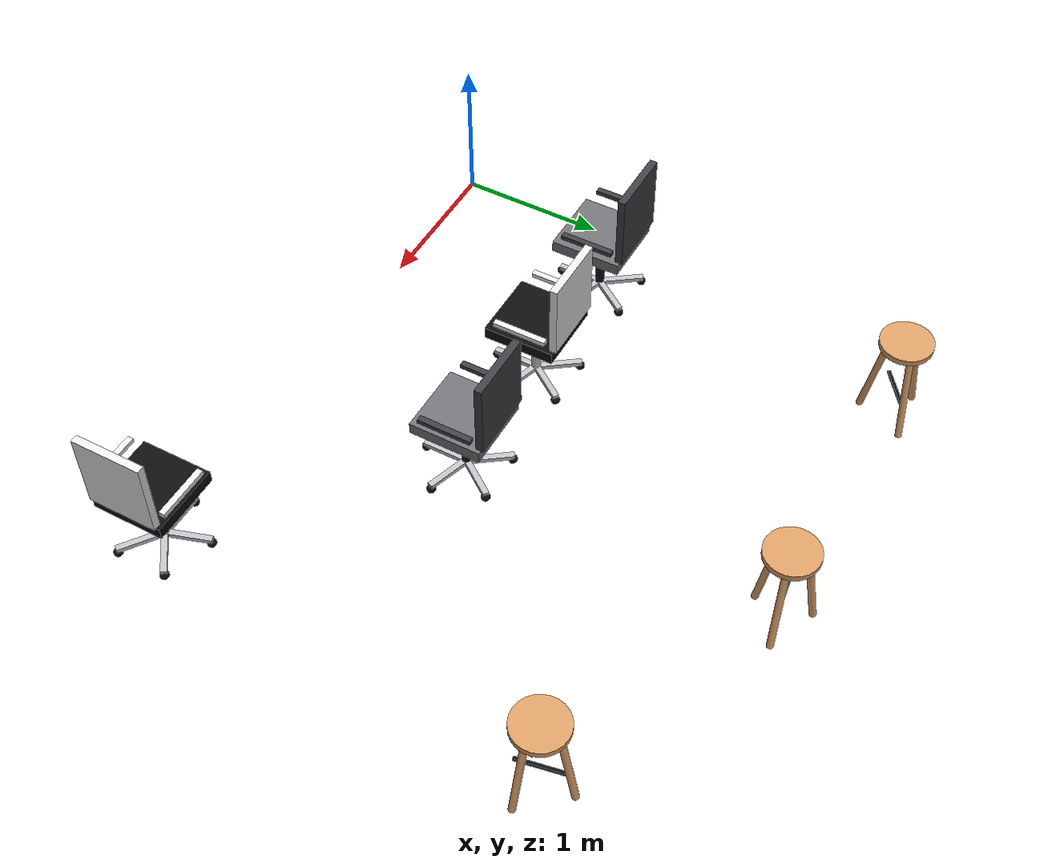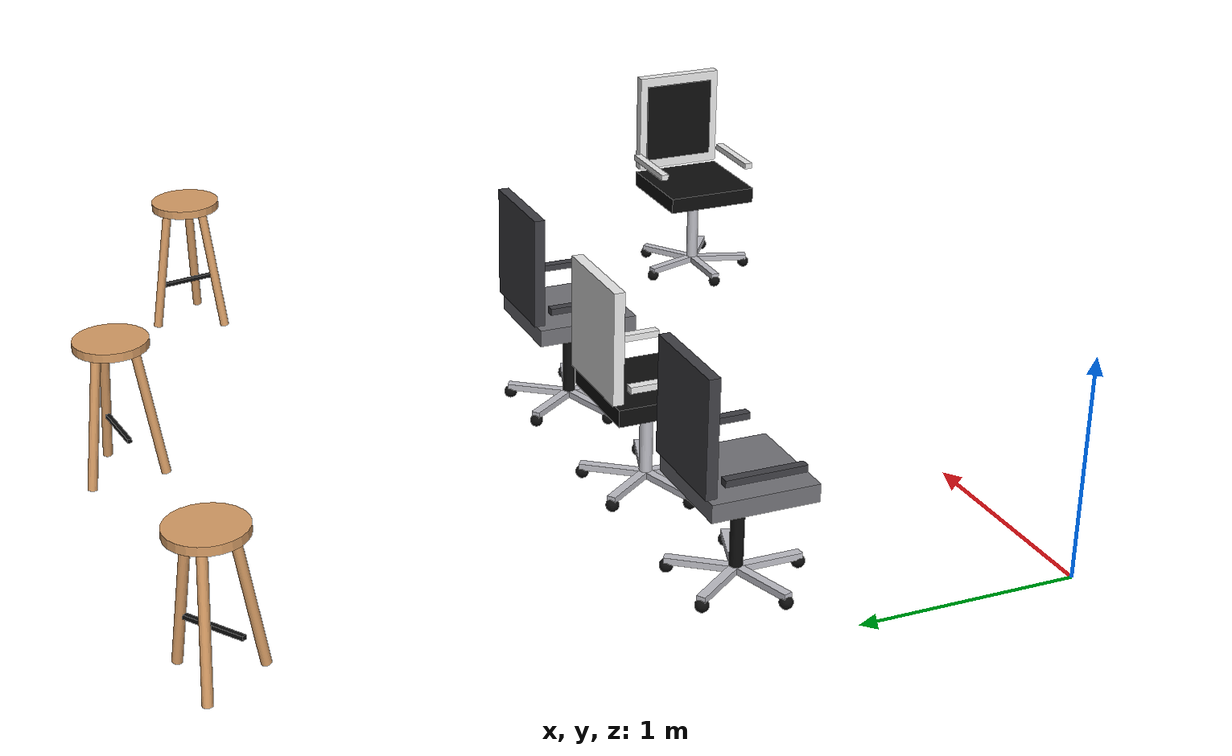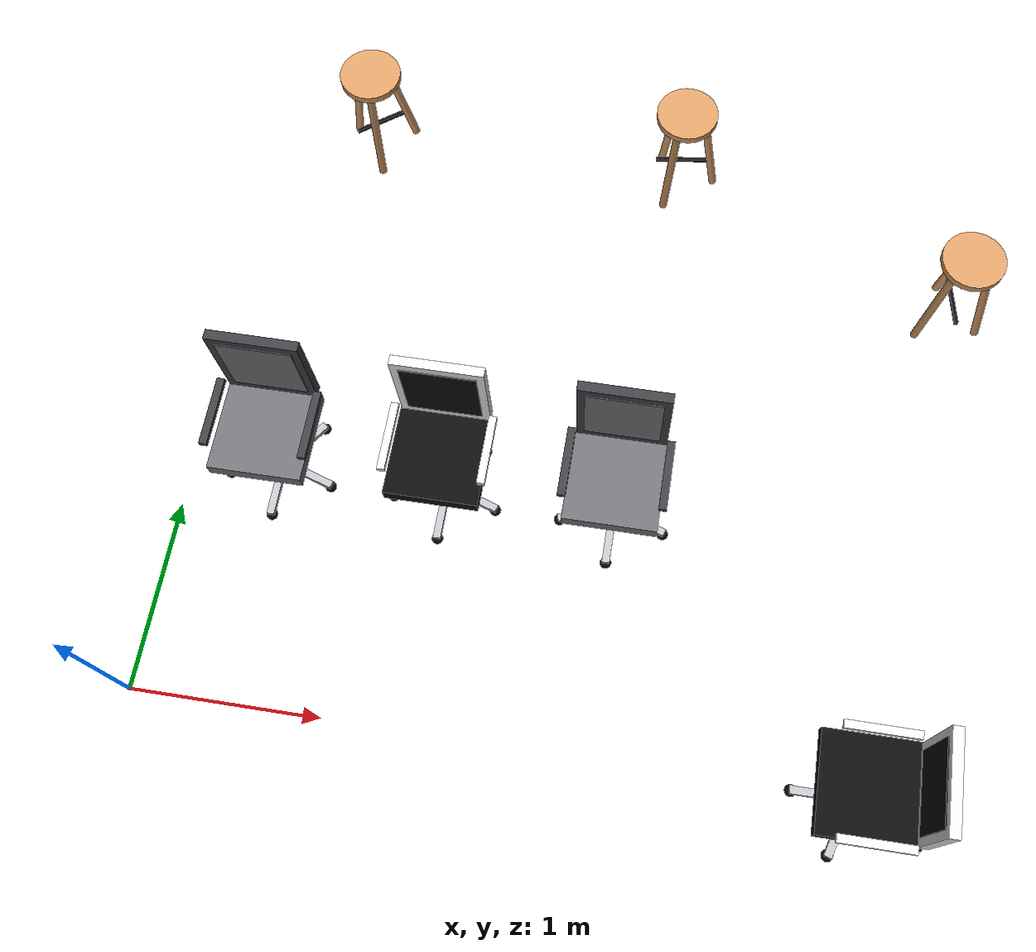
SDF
<sdf version="1.6">
 <world name="mahadev_lab">
  <include><uri>model://sun</uri></include>
  <model name="stool_left_4">
   <static>true</static>
   <pose>0.6000 3.4500 0.0000 0.0000 0.0000 0.6315</pose>
   <link name="link">
    <visual name="v1">
     <pose>0.0000 0.0000 0.6400 0.0000 0.0000 0.0000</pose>
     <geometry><cylinder><radius>0.17</radius><length>0.04</length></cylinder></geometry>
     <material>
      <ambient>0.85 0.62 0.4 1</ambient>
      <diffuse>0.85 0.62 0.4 1</diffuse>
      <specular>0.1 0.1 0.1 1</specular>
     </material>
    </visual>
    <visual name="v2">
     <pose>0.1500 0.0000 0.3100 0.0000 -0.1599 0.0000</pose>
     <geometry><cylinder><radius>0.022</radius><length>0.63</length></cylinder></geometry>
     <material>
      <ambient>0.85 0.62 0.4 1</ambient>
      <diffuse>0.85 0.62 0.4 1</diffuse>
      <specular>0.1 0.1 0.1 1</specular>
     </material>
    </visual>
    <visual name="v3">
     <pose>-0.0750 0.1299 0.3100 0.0000 -0.1599 2.0944</pose>
     <geometry><cylinder><radius>0.022</radius><length>0.63</length></cylinder></geometry>
     <material>
      <ambient>0.85 0.62 0.4 1</ambient>
      <diffuse>0.85 0.62 0.4 1</diffuse>
      <specular>0.1 0.1 0.1 1</specular>
     </material>
    </visual>
    <visual name="v4">
     <pose>-0.0750 -0.1299 0.3100 0.0000 -0.1599 4.1888</pose>
     <geometry><cylinder><radius>0.022</radius><length>0.63</length></cylinder></geometry>
     <material>
      <ambient>0.85 0.62 0.4 1</ambient>
      <diffuse>0.85 0.62 0.4 1</diffuse>
      <specular>0.1 0.1 0.1 1</specular>
     </material>
    </visual>
    <visual name="v5">
     <pose>0.0000 0.0000 0.2200 0.0000 0.0000 0.0000</pose>
     <geometry><box><size>0.3 0.02 0.02</size></box></geometry>
     <material>
      <ambient>0.05 0.05 0.05 1</ambient>
      <diffuse>0.05 0.05 0.05 1</diffuse>
      <specular>0.1 0.1 0.1 1</specular>
     </material>
    </visual>
    <collision name="c6">
     <pose>0.0000 0.0000 0.3300 0 0 0</pose>
     <geometry><cylinder><radius>0.2</radius><length>0.66</length></cylinder></geometry>
    </collision>
   </link>
  </model>
  <model name="stool_left_5">
   <static>true</static>
   <pose>2.4000 3.4500 0.0000 0.0000 0.0000 0.1366</pose>
   <link name="link">
    <visual name="v1">
     <pose>0.0000 0.0000 0.6400 0.0000 0.0000 0.0000</pose>
     <geometry><cylinder><radius>0.17</radius><length>0.04</length></cylinder></geometry>
     <material>
      <ambient>0.85 0.62 0.4 1</ambient>
      <diffuse>0.85 0.62 0.4 1</diffuse>
      <specular>0.1 0.1 0.1 1</specular>
     </material>
    </visual>
    <visual name="v2">
     <pose>0.1500 0.0000 0.3100 0.0000 -0.1599 0.0000</pose>
     <geometry><cylinder><radius>0.022</radius><length>0.63</length></cylinder></geometry>
     <material>
      <ambient>0.85 0.62 0.4 1</ambient>
      <diffuse>0.85 0.62 0.4 1</diffuse>
      <specular>0.1 0.1 0.1 1</specular>
     </material>
    </visual>
    <visual name="v3">
     <pose>-0.0750 0.1299 0.3100 0.0000 -0.1599 2.0944</pose>
     <geometry><cylinder><radius>0.022</radius><length>0.63</length></cylinder></geometry>
     <material>
      <ambient>0.85 0.62 0.4 1</ambient>
      <diffuse>0.85 0.62 0.4 1</diffuse>
      <specular>0.1 0.1 0.1 1</specular>
     </material>
    </visual>
    <visual name="v4">
     <pose>-0.0750 -0.1299 0.3100 0.0000 -0.1599 4.1888</pose>
     <geometry><cylinder><radius>0.022</radius><length>0.63</length></cylinder></geometry>
     <material>
      <ambient>0.85 0.62 0.4 1</ambient>
      <diffuse>0.85 0.62 0.4 1</diffuse>
      <specular>0.1 0.1 0.1 1</specular>
     </material>
    </visual>
    <visual name="v5">
     <pose>0.0000 0.0000 0.2200 0.0000 0.0000 0.0000</pose>
     <geometry><box><size>0.3 0.02 0.02</size></box></geometry>
     <material>
      <ambient>0.05 0.05 0.05 1</ambient>
      <diffuse>0.05 0.05 0.05 1</diffuse>
      <specular>0.1 0.1 0.1 1</specular>
     </material>
    </visual>
    <collision name="c6">
     <pose>0.0000 0.0000 0.3300 0 0 0</pose>
     <geometry><cylinder><radius>0.2</radius><length>0.66</length></cylinder></geometry>
    </collision>
   </link>
  </model>
  <model name="stool_corner_3">
   <static>true</static>
   <pose>4.0000 2.7500 0.0000 0.0000 0.0000 1.7621</pose>
   <link name="link">
    <visual name="v1">
     <pose>0.0000 0.0000 0.6400 0.0000 0.0000 0.0000</pose>
     <geometry><cylinder><radius>0.17</radius><length>0.04</length></cylinder></geometry>
     <material>
      <ambient>0.85 0.62 0.4 1</ambient>
      <diffuse>0.85 0.62 0.4 1</diffuse>
      <specular>0.1 0.1 0.1 1</specular>
     </material>
    </visual>
    <visual name="v2">
     <pose>0.1500 0.0000 0.3100 0.0000 -0.1599 0.0000</pose>
     <geometry><cylinder><radius>0.022</radius><length>0.63</length></cylinder></geometry>
     <material>
      <ambient>0.85 0.62 0.4 1</ambient>
      <diffuse>0.85 0.62 0.4 1</diffuse>
      <specular>0.1 0.1 0.1 1</specular>
     </material>
    </visual>
    <visual name="v3">
     <pose>-0.0750 0.1299 0.3100 0.0000 -0.1599 2.0944</pose>
     <geometry><cylinder><radius>0.022</radius><length>0.63</length></cylinder></geometry>
     <material>
      <ambient>0.85 0.62 0.4 1</ambient>
      <diffuse>0.85 0.62 0.4 1</diffuse>
      <specular>0.1 0.1 0.1 1</specular>
     </material>
    </visual>
    <visual name="v4">
     <pose>-0.0750 -0.1299 0.3100 0.0000 -0.1599 4.1888</pose>
     <geometry><cylinder><radius>0.022</radius><length>0.63</length></cylinder></geometry>
     <material>
      <ambient>0.85 0.62 0.4 1</ambient>
      <diffuse>0.85 0.62 0.4 1</diffuse>
      <specular>0.1 0.1 0.1 1</specular>
     </material>
    </visual>
    <visual name="v5">
     <pose>0.0000 0.0000 0.2200 0.0000 0.0000 0.0000</pose>
     <geometry><box><size>0.3 0.02 0.02</size></box></geometry>
     <material>
      <ambient>0.05 0.05 0.05 1</ambient>
      <diffuse>0.05 0.05 0.05 1</diffuse>
      <specular>0.1 0.1 0.1 1</specular>
     </material>
    </visual>
    <collision name="c6">
     <pose>0.0000 0.0000 0.3300 0 0 0</pose>
     <geometry><cylinder><radius>0.2</radius><length>0.66</length></cylinder></geometry>
    </collision>
   </link>
  </model>
  <model name="chair_l_3">
   <static>true</static>
   <pose>0.5000 1.3000 0.0000 0.0000 0.0000 -1.5708</pose>
   <link name="link">
    <visual name="v1">
     <pose>0.1500 0.0000 0.0600 0.0000 0.0000 0.0000</pose>
     <geometry><box><size>0.3 0.04 0.03</size></box></geometry>
     <material>
      <ambient>0.75 0.75 0.78 1</ambient>
      <diffuse>0.75 0.75 0.78 1</diffuse>
      <specular>0.1 0.1 0.1 1</specular>
     </material>
    </visual>
    <visual name="v2">
     <pose>0.2900 0.0000 0.0300 0.0000 0.0000 0.0000</pose>
     <geometry><sphere><radius>0.03</radius></sphere></geometry>
     <material>
      <ambient>0.05 0.05 0.05 1</ambient>
      <diffuse>0.05 0.05 0.05 1</diffuse>
      <specular>0.1 0.1 0.1 1</specular>
     </material>
    </visual>
    <visual name="v3">
     <pose>0.0464 0.1427 0.0600 0.0000 0.0000 1.2566</pose>
     <geometry><box><size>0.3 0.04 0.03</size></box></geometry>
     <material>
      <ambient>0.75 0.75 0.78 1</ambient>
      <diffuse>0.75 0.75 0.78 1</diffuse>
      <specular>0.1 0.1 0.1 1</specular>
     </material>
    </visual>
    <visual name="v4">
     <pose>0.0896 0.2758 0.0300 0.0000 0.0000 0.0000</pose>
     <geometry><sphere><radius>0.03</radius></sphere></geometry>
     <material>
      <ambient>0.05 0.05 0.05 1</ambient>
      <diffuse>0.05 0.05 0.05 1</diffuse>
      <specular>0.1 0.1 0.1 1</specular>
     </material>
    </visual>
    <visual name="v5">
     <pose>-0.1214 0.0882 0.0600 0.0000 0.0000 2.5133</pose>
     <geometry><box><size>0.3 0.04 0.03</size></box></geometry>
     <material>
      <ambient>0.75 0.75 0.78 1</ambient>
      <diffuse>0.75 0.75 0.78 1</diffuse>
      <specular>0.1 0.1 0.1 1</specular>
     </material>
    </visual>
    <visual name="v6">
     <pose>-0.2346 0.1705 0.0300 0.0000 0.0000 0.0000</pose>
     <geometry><sphere><radius>0.03</radius></sphere></geometry>
     <material>
      <ambient>0.05 0.05 0.05 1</ambient>
      <diffuse>0.05 0.05 0.05 1</diffuse>
      <specular>0.1 0.1 0.1 1</specular>
     </material>
    </visual>
    <visual name="v7">
     <pose>-0.1214 -0.0882 0.0600 0.0000 0.0000 3.7699</pose>
     <geometry><box><size>0.3 0.04 0.03</size></box></geometry>
     <material>
      <ambient>0.75 0.75 0.78 1</ambient>
      <diffuse>0.75 0.75 0.78 1</diffuse>
      <specular>0.1 0.1 0.1 1</specular>
     </material>
    </visual>
    <visual name="v8">
     <pose>-0.2346 -0.1705 0.0300 0.0000 0.0000 0.0000</pose>
     <geometry><sphere><radius>0.03</radius></sphere></geometry>
     <material>
      <ambient>0.05 0.05 0.05 1</ambient>
      <diffuse>0.05 0.05 0.05 1</diffuse>
      <specular>0.1 0.1 0.1 1</specular>
     </material>
    </visual>
    <visual name="v9">
     <pose>0.0464 -0.1427 0.0600 0.0000 0.0000 5.0265</pose>
     <geometry><box><size>0.3 0.04 0.03</size></box></geometry>
     <material>
      <ambient>0.75 0.75 0.78 1</ambient>
      <diffuse>0.75 0.75 0.78 1</diffuse>
      <specular>0.1 0.1 0.1 1</specular>
     </material>
    </visual>
    <visual name="v10">
     <pose>0.0896 -0.2758 0.0300 0.0000 0.0000 0.0000</pose>
     <geometry><sphere><radius>0.03</radius></sphere></geometry>
     <material>
      <ambient>0.05 0.05 0.05 1</ambient>
      <diffuse>0.05 0.05 0.05 1</diffuse>
      <specular>0.1 0.1 0.1 1</specular>
     </material>
    </visual>
    <visual name="v11">
     <pose>0.0000 0.0000 0.2700 0.0000 0.0000 0.0000</pose>
     <geometry><cylinder><radius>0.03</radius><length>0.4</length></cylinder></geometry>
     <material>
      <ambient>0.05 0.05 0.05 1</ambient>
      <diffuse>0.05 0.05 0.05 1</diffuse>
      <specular>0.1 0.1 0.1 1</specular>
     </material>
    </visual>
    <visual name="v12">
     <pose>0.0000 0.0000 0.4800 0.0000 0.0000 0.0000</pose>
     <geometry><box><size>0.48 0.48 0.08</size></box></geometry>
     <material>
      <ambient>0.45 0.45 0.47 1</ambient>
      <diffuse>0.45 0.45 0.47 1</diffuse>
      <specular>0.1 0.1 0.1 1</specular>
     </material>
    </visual>
    <visual name="v13">
     <pose>-0.2400 0.0000 0.8000 0.0000 0.0000 0.0000</pose>
     <geometry><box><size>0.05 0.46 0.52</size></box></geometry>
     <material>
      <ambient>0.25 0.25 0.27 1</ambient>
      <diffuse>0.25 0.25 0.27 1</diffuse>
      <specular>0.1 0.1 0.1 1</specular>
     </material>
    </visual>
    <visual name="v14">
     <pose>-0.2150 0.0000 0.8000 0.0000 0.0000 0.0000</pose>
     <geometry><box><size>0.01 0.38 0.42</size></box></geometry>
     <material>
      <ambient>0.45 0.45 0.47 1</ambient>
      <diffuse>0.45 0.45 0.47 1</diffuse>
      <specular>0.1 0.1 0.1 1</specular>
     </material>
    </visual>
    <visual name="v15">
     <pose>-0.0200 -0.2500 0.6200 0.0000 0.0000 0.0000</pose>
     <geometry><box><size>0.36 0.04 0.03</size></box></geometry>
     <material>
      <ambient>0.25 0.25 0.27 1</ambient>
      <diffuse>0.25 0.25 0.27 1</diffuse>
      <specular>0.1 0.1 0.1 1</specular>
     </material>
    </visual>
    <visual name="v16">
     <pose>-0.0200 0.2500 0.6200 0.0000 0.0000 0.0000</pose>
     <geometry><box><size>0.36 0.04 0.03</size></box></geometry>
     <material>
      <ambient>0.25 0.25 0.27 1</ambient>
      <diffuse>0.25 0.25 0.27 1</diffuse>
      <specular>0.1 0.1 0.1 1</specular>
     </material>
    </visual>
    <collision name="c17">
     <pose>0.0000 0.0000 0.2750 0 0 0</pose>
     <geometry><cylinder><radius>0.3</radius><length>0.55</length></cylinder></geometry>
    </collision>
   </link>
  </model>
  <model name="chair_l_4">
   <static>true</static>
   <pose>1.4000 1.3000 0.0000 0.0000 0.0000 -1.5708</pose>
   <link name="link">
    <visual name="v1">
     <pose>0.1500 0.0000 0.0600 0.0000 0.0000 0.0000</pose>
     <geometry><box><size>0.3 0.04 0.03</size></box></geometry>
     <material>
      <ambient>0.75 0.75 0.78 1</ambient>
      <diffuse>0.75 0.75 0.78 1</diffuse>
      <specular>0.1 0.1 0.1 1</specular>
     </material>
    </visual>
    <visual name="v2">
     <pose>0.2900 0.0000 0.0300 0.0000 0.0000 0.0000</pose>
     <geometry><sphere><radius>0.03</radius></sphere></geometry>
     <material>
      <ambient>0.05 0.05 0.05 1</ambient>
      <diffuse>0.05 0.05 0.05 1</diffuse>
      <specular>0.1 0.1 0.1 1</specular>
     </material>
    </visual>
    <visual name="v3">
     <pose>0.0464 0.1427 0.0600 0.0000 0.0000 1.2566</pose>
     <geometry><box><size>0.3 0.04 0.03</size></box></geometry>
     <material>
      <ambient>0.75 0.75 0.78 1</ambient>
      <diffuse>0.75 0.75 0.78 1</diffuse>
      <specular>0.1 0.1 0.1 1</specular>
     </material>
    </visual>
    <visual name="v4">
     <pose>0.0896 0.2758 0.0300 0.0000 0.0000 0.0000</pose>
     <geometry><sphere><radius>0.03</radius></sphere></geometry>
     <material>
      <ambient>0.05 0.05 0.05 1</ambient>
      <diffuse>0.05 0.05 0.05 1</diffuse>
      <specular>0.1 0.1 0.1 1</specular>
     </material>
    </visual>
    <visual name="v5">
     <pose>-0.1214 0.0882 0.0600 0.0000 0.0000 2.5133</pose>
     <geometry><box><size>0.3 0.04 0.03</size></box></geometry>
     <material>
      <ambient>0.75 0.75 0.78 1</ambient>
      <diffuse>0.75 0.75 0.78 1</diffuse>
      <specular>0.1 0.1 0.1 1</specular>
     </material>
    </visual>
    <visual name="v6">
     <pose>-0.2346 0.1705 0.0300 0.0000 0.0000 0.0000</pose>
     <geometry><sphere><radius>0.03</radius></sphere></geometry>
     <material>
      <ambient>0.05 0.05 0.05 1</ambient>
      <diffuse>0.05 0.05 0.05 1</diffuse>
      <specular>0.1 0.1 0.1 1</specular>
     </material>
    </visual>
    <visual name="v7">
     <pose>-0.1214 -0.0882 0.0600 0.0000 0.0000 3.7699</pose>
     <geometry><box><size>0.3 0.04 0.03</size></box></geometry>
     <material>
      <ambient>0.75 0.75 0.78 1</ambient>
      <diffuse>0.75 0.75 0.78 1</diffuse>
      <specular>0.1 0.1 0.1 1</specular>
     </material>
    </visual>
    <visual name="v8">
     <pose>-0.2346 -0.1705 0.0300 0.0000 0.0000 0.0000</pose>
     <geometry><sphere><radius>0.03</radius></sphere></geometry>
     <material>
      <ambient>0.05 0.05 0.05 1</ambient>
      <diffuse>0.05 0.05 0.05 1</diffuse>
      <specular>0.1 0.1 0.1 1</specular>
     </material>
    </visual>
    <visual name="v9">
     <pose>0.0464 -0.1427 0.0600 0.0000 0.0000 5.0265</pose>
     <geometry><box><size>0.3 0.04 0.03</size></box></geometry>
     <material>
      <ambient>0.75 0.75 0.78 1</ambient>
      <diffuse>0.75 0.75 0.78 1</diffuse>
      <specular>0.1 0.1 0.1 1</specular>
     </material>
    </visual>
    <visual name="v10">
     <pose>0.0896 -0.2758 0.0300 0.0000 0.0000 0.0000</pose>
     <geometry><sphere><radius>0.03</radius></sphere></geometry>
     <material>
      <ambient>0.05 0.05 0.05 1</ambient>
      <diffuse>0.05 0.05 0.05 1</diffuse>
      <specular>0.1 0.1 0.1 1</specular>
     </material>
    </visual>
    <visual name="v11">
     <pose>0.0000 0.0000 0.2700 0.0000 0.0000 0.0000</pose>
     <geometry><cylinder><radius>0.03</radius><length>0.4</length></cylinder></geometry>
     <material>
      <ambient>0.75 0.75 0.78 1</ambient>
      <diffuse>0.75 0.75 0.78 1</diffuse>
      <specular>0.1 0.1 0.1 1</specular>
     </material>
    </visual>
    <visual name="v12">
     <pose>0.0000 0.0000 0.4800 0.0000 0.0000 0.0000</pose>
     <geometry><box><size>0.48 0.48 0.08</size></box></geometry>
     <material>
      <ambient>0.05 0.05 0.05 1</ambient>
      <diffuse>0.05 0.05 0.05 1</diffuse>
      <specular>0.1 0.1 0.1 1</specular>
     </material>
    </visual>
    <visual name="v13">
     <pose>-0.2400 0.0000 0.8000 0.0000 0.0000 0.0000</pose>
     <geometry><box><size>0.05 0.46 0.52</size></box></geometry>
     <material>
      <ambient>0.92 0.92 0.92 1</ambient>
      <diffuse>0.92 0.92 0.92 1</diffuse>
      <specular>0.1 0.1 0.1 1</specular>
     </material>
    </visual>
    <visual name="v14">
     <pose>-0.2150 0.0000 0.8000 0.0000 0.0000 0.0000</pose>
     <geometry><box><size>0.01 0.38 0.42</size></box></geometry>
     <material>
      <ambient>0.05 0.05 0.05 1</ambient>
      <diffuse>0.05 0.05 0.05 1</diffuse>
      <specular>0.1 0.1 0.1 1</specular>
     </material>
    </visual>
    <visual name="v15">
     <pose>-0.0200 -0.2500 0.6200 0.0000 0.0000 0.0000</pose>
     <geometry><box><size>0.36 0.04 0.03</size></box></geometry>
     <material>
      <ambient>0.92 0.92 0.92 1</ambient>
      <diffuse>0.92 0.92 0.92 1</diffuse>
      <specular>0.1 0.1 0.1 1</specular>
     </material>
    </visual>
    <visual name="v16">
     <pose>-0.0200 0.2500 0.6200 0.0000 0.0000 0.0000</pose>
     <geometry><box><size>0.36 0.04 0.03</size></box></geometry>
     <material>
      <ambient>0.92 0.92 0.92 1</ambient>
      <diffuse>0.92 0.92 0.92 1</diffuse>
      <specular>0.1 0.1 0.1 1</specular>
     </material>
    </visual>
    <collision name="c17">
     <pose>0.0000 0.0000 0.2750 0 0 0</pose>
     <geometry><cylinder><radius>0.3</radius><length>0.55</length></cylinder></geometry>
    </collision>
   </link>
  </model>
  <model name="chair_l_5">
   <static>true</static>
   <pose>2.3000 1.3000 0.0000 0.0000 0.0000 -1.5708</pose>
   <link name="link">
    <visual name="v1">
     <pose>0.1500 0.0000 0.0600 0.0000 0.0000 0.0000</pose>
     <geometry><box><size>0.3 0.04 0.03</size></box></geometry>
     <material>
      <ambient>0.75 0.75 0.78 1</ambient>
      <diffuse>0.75 0.75 0.78 1</diffuse>
      <specular>0.1 0.1 0.1 1</specular>
     </material>
    </visual>
    <visual name="v2">
     <pose>0.2900 0.0000 0.0300 0.0000 0.0000 0.0000</pose>
     <geometry><sphere><radius>0.03</radius></sphere></geometry>
     <material>
      <ambient>0.05 0.05 0.05 1</ambient>
      <diffuse>0.05 0.05 0.05 1</diffuse>
      <specular>0.1 0.1 0.1 1</specular>
     </material>
    </visual>
    <visual name="v3">
     <pose>0.0464 0.1427 0.0600 0.0000 0.0000 1.2566</pose>
     <geometry><box><size>0.3 0.04 0.03</size></box></geometry>
     <material>
      <ambient>0.75 0.75 0.78 1</ambient>
      <diffuse>0.75 0.75 0.78 1</diffuse>
      <specular>0.1 0.1 0.1 1</specular>
     </material>
    </visual>
    <visual name="v4">
     <pose>0.0896 0.2758 0.0300 0.0000 0.0000 0.0000</pose>
     <geometry><sphere><radius>0.03</radius></sphere></geometry>
     <material>
      <ambient>0.05 0.05 0.05 1</ambient>
      <diffuse>0.05 0.05 0.05 1</diffuse>
      <specular>0.1 0.1 0.1 1</specular>
     </material>
    </visual>
    <visual name="v5">
     <pose>-0.1214 0.0882 0.0600 0.0000 0.0000 2.5133</pose>
     <geometry><box><size>0.3 0.04 0.03</size></box></geometry>
     <material>
      <ambient>0.75 0.75 0.78 1</ambient>
      <diffuse>0.75 0.75 0.78 1</diffuse>
      <specular>0.1 0.1 0.1 1</specular>
     </material>
    </visual>
    <visual name="v6">
     <pose>-0.2346 0.1705 0.0300 0.0000 0.0000 0.0000</pose>
     <geometry><sphere><radius>0.03</radius></sphere></geometry>
     <material>
      <ambient>0.05 0.05 0.05 1</ambient>
      <diffuse>0.05 0.05 0.05 1</diffuse>
      <specular>0.1 0.1 0.1 1</specular>
     </material>
    </visual>
    <visual name="v7">
     <pose>-0.1214 -0.0882 0.0600 0.0000 0.0000 3.7699</pose>
     <geometry><box><size>0.3 0.04 0.03</size></box></geometry>
     <material>
      <ambient>0.75 0.75 0.78 1</ambient>
      <diffuse>0.75 0.75 0.78 1</diffuse>
      <specular>0.1 0.1 0.1 1</specular>
     </material>
    </visual>
    <visual name="v8">
     <pose>-0.2346 -0.1705 0.0300 0.0000 0.0000 0.0000</pose>
     <geometry><sphere><radius>0.03</radius></sphere></geometry>
     <material>
      <ambient>0.05 0.05 0.05 1</ambient>
      <diffuse>0.05 0.05 0.05 1</diffuse>
      <specular>0.1 0.1 0.1 1</specular>
     </material>
    </visual>
    <visual name="v9">
     <pose>0.0464 -0.1427 0.0600 0.0000 0.0000 5.0265</pose>
     <geometry><box><size>0.3 0.04 0.03</size></box></geometry>
     <material>
      <ambient>0.75 0.75 0.78 1</ambient>
      <diffuse>0.75 0.75 0.78 1</diffuse>
      <specular>0.1 0.1 0.1 1</specular>
     </material>
    </visual>
    <visual name="v10">
     <pose>0.0896 -0.2758 0.0300 0.0000 0.0000 0.0000</pose>
     <geometry><sphere><radius>0.03</radius></sphere></geometry>
     <material>
      <ambient>0.05 0.05 0.05 1</ambient>
      <diffuse>0.05 0.05 0.05 1</diffuse>
      <specular>0.1 0.1 0.1 1</specular>
     </material>
    </visual>
    <visual name="v11">
     <pose>0.0000 0.0000 0.2700 0.0000 0.0000 0.0000</pose>
     <geometry><cylinder><radius>0.03</radius><length>0.4</length></cylinder></geometry>
     <material>
      <ambient>0.05 0.05 0.05 1</ambient>
      <diffuse>0.05 0.05 0.05 1</diffuse>
      <specular>0.1 0.1 0.1 1</specular>
     </material>
    </visual>
    <visual name="v12">
     <pose>0.0000 0.0000 0.4800 0.0000 0.0000 0.0000</pose>
     <geometry><box><size>0.48 0.48 0.08</size></box></geometry>
     <material>
      <ambient>0.45 0.45 0.47 1</ambient>
      <diffuse>0.45 0.45 0.47 1</diffuse>
      <specular>0.1 0.1 0.1 1</specular>
     </material>
    </visual>
    <visual name="v13">
     <pose>-0.2400 0.0000 0.8000 0.0000 0.0000 0.0000</pose>
     <geometry><box><size>0.05 0.46 0.52</size></box></geometry>
     <material>
      <ambient>0.25 0.25 0.27 1</ambient>
      <diffuse>0.25 0.25 0.27 1</diffuse>
      <specular>0.1 0.1 0.1 1</specular>
     </material>
    </visual>
    <visual name="v14">
     <pose>-0.2150 0.0000 0.8000 0.0000 0.0000 0.0000</pose>
     <geometry><box><size>0.01 0.38 0.42</size></box></geometry>
     <material>
      <ambient>0.45 0.45 0.47 1</ambient>
      <diffuse>0.45 0.45 0.47 1</diffuse>
      <specular>0.1 0.1 0.1 1</specular>
     </material>
    </visual>
    <visual name="v15">
     <pose>-0.0200 -0.2500 0.6200 0.0000 0.0000 0.0000</pose>
     <geometry><box><size>0.36 0.04 0.03</size></box></geometry>
     <material>
      <ambient>0.25 0.25 0.27 1</ambient>
      <diffuse>0.25 0.25 0.27 1</diffuse>
      <specular>0.1 0.1 0.1 1</specular>
     </material>
    </visual>
    <visual name="v16">
     <pose>-0.0200 0.2500 0.6200 0.0000 0.0000 0.0000</pose>
     <geometry><box><size>0.36 0.04 0.03</size></box></geometry>
     <material>
      <ambient>0.25 0.25 0.27 1</ambient>
      <diffuse>0.25 0.25 0.27 1</diffuse>
      <specular>0.1 0.1 0.1 1</specular>
     </material>
    </visual>
    <collision name="c17">
     <pose>0.0000 0.0000 0.2750 0 0 0</pose>
     <geometry><cylinder><radius>0.3</radius><length>0.55</length></cylinder></geometry>
    </collision>
   </link>
  </model>
  <model name="chair_end_tv">
   <static>true</static>
   <pose>3.6500 0.0000 0.0000 0.0000 0.0000 3.1416</pose>
   <link name="link">
    <visual name="v1">
     <pose>0.1500 0.0000 0.0600 0.0000 0.0000 0.0000</pose>
     <geometry><box><size>0.3 0.04 0.03</size></box></geometry>
     <material>
      <ambient>0.75 0.75 0.78 1</ambient>
      <diffuse>0.75 0.75 0.78 1</diffuse>
      <specular>0.1 0.1 0.1 1</specular>
     </material>
    </visual>
    <visual name="v2">
     <pose>0.2900 0.0000 0.0300 0.0000 0.0000 0.0000</pose>
     <geometry><sphere><radius>0.03</radius></sphere></geometry>
     <material>
      <ambient>0.05 0.05 0.05 1</ambient>
      <diffuse>0.05 0.05 0.05 1</diffuse>
      <specular>0.1 0.1 0.1 1</specular>
     </material>
    </visual>
    <visual name="v3">
     <pose>0.0464 0.1427 0.0600 0.0000 0.0000 1.2566</pose>
     <geometry><box><size>0.3 0.04 0.03</size></box></geometry>
     <material>
      <ambient>0.75 0.75 0.78 1</ambient>
      <diffuse>0.75 0.75 0.78 1</diffuse>
      <specular>0.1 0.1 0.1 1</specular>
     </material>
    </visual>
    <visual name="v4">
     <pose>0.0896 0.2758 0.0300 0.0000 0.0000 0.0000</pose>
     <geometry><sphere><radius>0.03</radius></sphere></geometry>
     <material>
      <ambient>0.05 0.05 0.05 1</ambient>
      <diffuse>0.05 0.05 0.05 1</diffuse>
      <specular>0.1 0.1 0.1 1</specular>
     </material>
    </visual>
    <visual name="v5">
     <pose>-0.1214 0.0882 0.0600 0.0000 0.0000 2.5133</pose>
     <geometry><box><size>0.3 0.04 0.03</size></box></geometry>
     <material>
      <ambient>0.75 0.75 0.78 1</ambient>
      <diffuse>0.75 0.75 0.78 1</diffuse>
      <specular>0.1 0.1 0.1 1</specular>
     </material>
    </visual>
    <visual name="v6">
     <pose>-0.2346 0.1705 0.0300 0.0000 0.0000 0.0000</pose>
     <geometry><sphere><radius>0.03</radius></sphere></geometry>
     <material>
      <ambient>0.05 0.05 0.05 1</ambient>
      <diffuse>0.05 0.05 0.05 1</diffuse>
      <specular>0.1 0.1 0.1 1</specular>
     </material>
    </visual>
    <visual name="v7">
     <pose>-0.1214 -0.0882 0.0600 0.0000 0.0000 3.7699</pose>
     <geometry><box><size>0.3 0.04 0.03</size></box></geometry>
     <material>
      <ambient>0.75 0.75 0.78 1</ambient>
      <diffuse>0.75 0.75 0.78 1</diffuse>
      <specular>0.1 0.1 0.1 1</specular>
     </material>
    </visual>
    <visual name="v8">
     <pose>-0.2346 -0.1705 0.0300 0.0000 0.0000 0.0000</pose>
     <geometry><sphere><radius>0.03</radius></sphere></geometry>
     <material>
      <ambient>0.05 0.05 0.05 1</ambient>
      <diffuse>0.05 0.05 0.05 1</diffuse>
      <specular>0.1 0.1 0.1 1</specular>
     </material>
    </visual>
    <visual name="v9">
     <pose>0.0464 -0.1427 0.0600 0.0000 0.0000 5.0265</pose>
     <geometry><box><size>0.3 0.04 0.03</size></box></geometry>
     <material>
      <ambient>0.75 0.75 0.78 1</ambient>
      <diffuse>0.75 0.75 0.78 1</diffuse>
      <specular>0.1 0.1 0.1 1</specular>
     </material>
    </visual>
    <visual name="v10">
     <pose>0.0896 -0.2758 0.0300 0.0000 0.0000 0.0000</pose>
     <geometry><sphere><radius>0.03</radius></sphere></geometry>
     <material>
      <ambient>0.05 0.05 0.05 1</ambient>
      <diffuse>0.05 0.05 0.05 1</diffuse>
      <specular>0.1 0.1 0.1 1</specular>
     </material>
    </visual>
    <visual name="v11">
     <pose>0.0000 0.0000 0.2700 0.0000 0.0000 0.0000</pose>
     <geometry><cylinder><radius>0.03</radius><length>0.4</length></cylinder></geometry>
     <material>
      <ambient>0.75 0.75 0.78 1</ambient>
      <diffuse>0.75 0.75 0.78 1</diffuse>
      <specular>0.1 0.1 0.1 1</specular>
     </material>
    </visual>
    <visual name="v12">
     <pose>0.0000 0.0000 0.4800 0.0000 0.0000 0.0000</pose>
     <geometry><box><size>0.48 0.48 0.08</size></box></geometry>
     <material>
      <ambient>0.05 0.05 0.05 1</ambient>
      <diffuse>0.05 0.05 0.05 1</diffuse>
      <specular>0.1 0.1 0.1 1</specular>
     </material>
    </visual>
    <visual name="v13">
     <pose>-0.2400 0.0000 0.8000 0.0000 0.0000 0.0000</pose>
     <geometry><box><size>0.05 0.46 0.52</size></box></geometry>
     <material>
      <ambient>0.92 0.92 0.92 1</ambient>
      <diffuse>0.92 0.92 0.92 1</diffuse>
      <specular>0.1 0.1 0.1 1</specular>
     </material>
    </visual>
    <visual name="v14">
     <pose>-0.2150 0.0000 0.8000 0.0000 0.0000 0.0000</pose>
     <geometry><box><size>0.01 0.38 0.42</size></box></geometry>
     <material>
      <ambient>0.05 0.05 0.05 1</ambient>
      <diffuse>0.05 0.05 0.05 1</diffuse>
      <specular>0.1 0.1 0.1 1</specular>
     </material>
    </visual>
    <visual name="v15">
     <pose>-0.0200 -0.2500 0.6200 0.0000 0.0000 0.0000</pose>
     <geometry><box><size>0.36 0.04 0.03</size></box></geometry>
     <material>
      <ambient>0.92 0.92 0.92 1</ambient>
      <diffuse>0.92 0.92 0.92 1</diffuse>
      <specular>0.1 0.1 0.1 1</specular>
     </material>
    </visual>
    <visual name="v16">
     <pose>-0.0200 0.2500 0.6200 0.0000 0.0000 0.0000</pose>
     <geometry><box><size>0.36 0.04 0.03</size></box></geometry>
     <material>
      <ambient>0.92 0.92 0.92 1</ambient>
      <diffuse>0.92 0.92 0.92 1</diffuse>
      <specular>0.1 0.1 0.1 1</specular>
     </material>
    </visual>
    <collision name="c17">
     <pose>0.0000 0.0000 0.2750 0 0 0</pose>
     <geometry><cylinder><radius>0.3</radius><length>0.55</length></cylinder></geometry>
    </collision>
   </link>
  </model>
 </world>
</sdf>
